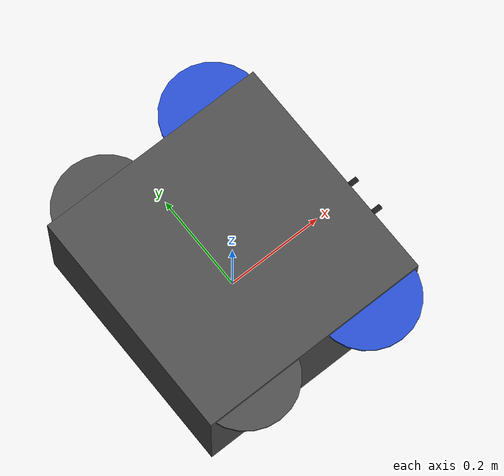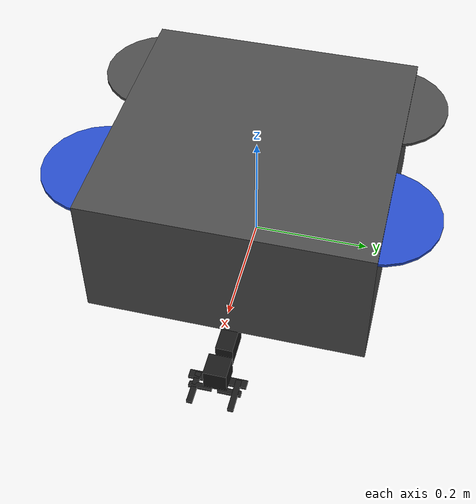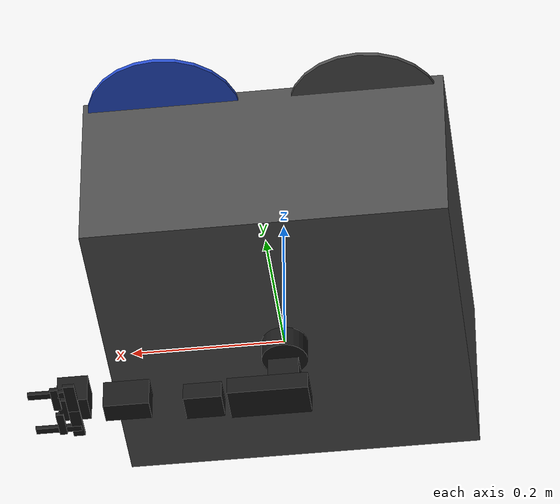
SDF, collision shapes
<?xml version="1.0"?>
<sdf version="1.9">

  <model name="iris_with_arm">
    <include merge="true">
      <uri>model://iris_with_standoffs</uri>
    </include>

    <include merge="true">
      <uri>model://learm</uri>
      <name>learm</name>
      <pose degrees="true">0 0 0 180 0 0</pose>
    </include>

    <joint name="arm_base_joint" type="fixed">
      <pose relative_to="base_link">0 0 -0.05 0 0 0</pose>
      <parent>base_link</parent>
      <child>arm_base_link</child>
    </joint>

    <plugin filename="gz-sim-joint-state-publisher-system"
      name="gz::sim::systems::JointStatePublisher">
    </plugin>

    <plugin
      filename="gz-sim-odometry-publisher-system"
      name="gz::sim::systems::OdometryPublisher">
      <odom_frame>odom</odom_frame>
      <robot_base_frame>base_link</robot_base_frame>
      <dimensions>3</dimensions>
    </plugin>

    <plugin filename="gz-sim-lift-drag-system"
        name="gz::sim::systems::LiftDrag">
      <a0>0.3</a0>
      <alpha_stall>1.4</alpha_stall>
      <cla>4.2500</cla>
      <cda>0.10</cda>
      <cma>0.0</cma>
      <cla_stall>-0.025</cla_stall>
      <cda_stall>0.0</cda_stall>
      <cma_stall>0.0</cma_stall>
      <area>0.002</area>
      <air_density>1.2041</air_density>
      <cp>0.084 0 0</cp>
      <forward>0 1 0</forward>
      <upward>0 0 1</upward>
      <link_name>rotor_0</link_name>
    </plugin>
    <plugin filename="gz-sim-lift-drag-system"
        name="gz::sim::systems::LiftDrag">
      <a0>0.3</a0>
      <alpha_stall>1.4</alpha_stall>
      <cla>4.2500</cla>
      <cda>0.10</cda>
      <cma>0.0</cma>
      <cla_stall>-0.025</cla_stall>
      <cda_stall>0.0</cda_stall>
      <cma_stall>0.0</cma_stall>
      <area>0.002</area>
      <air_density>1.2041</air_density>
      <cp>-0.084 0 0</cp>
      <forward>0 -1 0</forward>
      <upward>0 0 1</upward>
      <link_name>rotor_0</link_name>
    </plugin>

    <plugin filename="gz-sim-lift-drag-system"
        name="gz::sim::systems::LiftDrag">
      <a0>0.3</a0>
      <alpha_stall>1.4</alpha_stall>
      <cla>4.2500</cla>
      <cda>0.10</cda>
      <cma>0.0</cma>
      <cla_stall>-0.025</cla_stall>
      <cda_stall>0.0</cda_stall>
      <cma_stall>0.0</cma_stall>
      <area>0.002</area>
      <air_density>1.2041</air_density>
      <cp>0.084 0 0</cp>
      <forward>0 1 0</forward>
      <upward>0 0 1</upward>
      <link_name>rotor_1</link_name>
    </plugin>
    <plugin filename="gz-sim-lift-drag-system"
        name="gz::sim::systems::LiftDrag">
      <a0>0.3</a0>
      <alpha_stall>1.4</alpha_stall>
      <cla>4.2500</cla>
      <cda>0.10</cda>
      <cma>0.0</cma>
      <cla_stall>-0.025</cla_stall>
      <cda_stall>0.0</cda_stall>
      <cma_stall>0.0</cma_stall>
      <area>0.002</area>
      <air_density>1.2041</air_density>
      <cp>-0.084 0 0</cp>
      <forward>0 -1 0</forward>
      <upward>0 0 1</upward>
      <link_name>rotor_1</link_name>
    </plugin>

    <plugin filename="gz-sim-lift-drag-system"
        name="gz::sim::systems::LiftDrag">
      <a0>0.3</a0>
      <alpha_stall>1.4</alpha_stall>
      <cla>4.2500</cla>
      <cda>0.10</cda>
      <cma>0.0</cma>
      <cla_stall>-0.025</cla_stall>
      <cda_stall>0.0</cda_stall>
      <cma_stall>0.0</cma_stall>
      <area>0.002</area>
      <air_density>1.2041</air_density>
      <cp>0.084 0 0</cp>
      <forward>0 -1 0</forward>
      <upward>0 0 1</upward>
      <link_name>rotor_2</link_name>
    </plugin>
    <plugin filename="gz-sim-lift-drag-system"
        name="gz::sim::systems::LiftDrag">
      <a0>0.3</a0>
      <alpha_stall>1.4</alpha_stall>
      <cla>4.2500</cla>
      <cda>0.10</cda>
      <cma>0.0</cma>
      <cla_stall>-0.025</cla_stall>
      <cda_stall>0.0</cda_stall>
      <cma_stall>0.0</cma_stall>
      <area>0.002</area>
      <air_density>1.2041</air_density>
      <cp>-0.084 0 0</cp>
      <forward>0 1 0</forward>
      <upward>0 0 1</upward>
      <link_name>rotor_2</link_name>
    </plugin>

    <plugin filename="gz-sim-lift-drag-system"
        name="gz::sim::systems::LiftDrag">
      <a0>0.3</a0>
      <alpha_stall>1.4</alpha_stall>
      <cla>4.2500</cla>
      <cda>0.10</cda>
      <cma>0.0</cma>
      <cla_stall>-0.025</cla_stall>
      <cda_stall>0.0</cda_stall>
      <cma_stall>0.0</cma_stall>
      <area>0.002</area>
      <air_density>1.2041</air_density>
      <cp>0.084 0 0</cp>
      <forward>0 -1 0</forward>
      <upward>0 0 1</upward>
      <link_name>rotor_3</link_name>
    </plugin>
    <plugin filename="gz-sim-lift-drag-system"
        name="gz::sim::systems::LiftDrag">
      <a0>0.3</a0>
      <alpha_stall>1.4</alpha_stall>
      <cla>4.2500</cla>
      <cda>0.10</cda>
      <cma>0.0</cma>
      <cla_stall>-0.025</cla_stall>
      <cda_stall>0.0</cda_stall>
      <cma_stall>0.0</cma_stall>
      <area>0.002</area>
      <air_density>1.2041</air_density>
      <cp>-0.084 0 0</cp>
      <forward>0 1 0</forward>
      <upward>0 0 1</upward>
      <link_name>rotor_3</link_name>
    </plugin>

    <plugin filename="gz-sim-apply-joint-force-system"
      name="gz::sim::systems::ApplyJointForce">
      <joint_name>rotor_0_joint</joint_name>
    </plugin>
    <plugin filename="gz-sim-apply-joint-force-system"
      name="gz::sim::systems::ApplyJointForce">
      <joint_name>rotor_1_joint</joint_name>
    </plugin>
    <plugin filename="gz-sim-apply-joint-force-system"
      name="gz::sim::systems::ApplyJointForce">
      <joint_name>rotor_2_joint</joint_name>
    </plugin>
    <plugin filename="gz-sim-apply-joint-force-system"
      name="gz::sim::systems::ApplyJointForce">
      <joint_name>rotor_3_joint</joint_name>
    </plugin>

    <plugin filename="gz-sim-linearbatteryplugin-system"
      name="gz::sim::systems::LinearBatteryPlugin">
      <battery_name>lipo_3500mAh</battery_name>
      <fix_issue_225>true</fix_issue_225>
      <open_circuit_voltage_constant_coef>12.6</open_circuit_voltage_constant_coef>
      <open_circuit_voltage_linear_coef>-2.7</open_circuit_voltage_linear_coef>
      <capacity>3.5</capacity>
      <voltage>12.6</voltage>
      <initial_charge>3.5</initial_charge>
      <power_load>200.0</power_load>
      <start_draining>false</start_draining>
    </plugin>

    <plugin name="ArduPilotPlugin"
      filename="ArduPilotPlugin">
      <fdm_addr>127.0.0.1</fdm_addr>
      <fdm_port_in>9002</fdm_port_in>
      <connectionTimeoutMaxCount>5</connectionTimeoutMaxCount>
      <lock_step>1</lock_step>
      <modelXYZToAirplaneXForwardZDown degrees="true">0 0 0 180 0 0</modelXYZToAirplaneXForwardZDown>
      <gazeboXYZToNED degrees="true">0 0 0 180 0 90</gazeboXYZToNED>

      <!-- Sensors -->
      <imuName>imu_link::imu_sensor</imuName>

      <!-- Control channels -->
      <!--
          incoming control command [0, 1]
          so offset it by 0 to get [0, 1]
          and divide max target by 1.
          offset = 0
          multiplier = 838 max rpm / 1 = 838
        -->
      <control channel="0">
        <jointName>rotor_0_joint</jointName>
        <useForce>1</useForce>
        <multiplier>838</multiplier>
        <offset>0</offset>
        <servo_min>1100</servo_min>
        <servo_max>1900</servo_max>
        <type>VELOCITY</type>
        <p_gain>0.20</p_gain>
        <i_gain>0</i_gain>
        <d_gain>0</d_gain>
        <i_max>0</i_max>
        <i_min>0</i_min>
        <cmd_max>2.5</cmd_max>
        <cmd_min>-2.5</cmd_min>
        <controlVelocitySlowdownSim>1</controlVelocitySlowdownSim>
      </control>

      <control channel="1">
        <jointName>rotor_1_joint</jointName>
        <useForce>1</useForce>
        <multiplier>838</multiplier>
        <offset>0</offset>
        <servo_min>1100</servo_min>
        <servo_max>1900</servo_max>
        <type>VELOCITY</type>
        <p_gain>0.20</p_gain>
        <i_gain>0</i_gain>
        <d_gain>0</d_gain>
        <i_max>0</i_max>
        <i_min>0</i_min>
        <cmd_max>2.5</cmd_max>
        <cmd_min>-2.5</cmd_min>
        <controlVelocitySlowdownSim>1</controlVelocitySlowdownSim>
      </control>

      <control channel="2">
        <jointName>rotor_2_joint</jointName>
        <useForce>1</useForce>
        <multiplier>-838</multiplier>
        <offset>0</offset>
        <servo_min>1100</servo_min>
        <servo_max>1900</servo_max>
        <type>VELOCITY</type>
        <p_gain>0.20</p_gain>
        <i_gain>0</i_gain>
        <d_gain>0</d_gain>
        <i_max>0</i_max>
        <i_min>0</i_min>
        <cmd_max>2.5</cmd_max>
        <cmd_min>-2.5</cmd_min>
        <controlVelocitySlowdownSim>1</controlVelocitySlowdownSim>
      </control>

      <control channel="3">
        <jointName>rotor_3_joint</jointName>
        <useForce>1</useForce>
        <multiplier>-838</multiplier>
        <offset>0</offset>
        <servo_min>1100</servo_min>
        <servo_max>1900</servo_max>
        <type>VELOCITY</type>
        <p_gain>0.20</p_gain>
        <i_gain>0</i_gain>
        <d_gain>0</d_gain>
        <i_max>0</i_max>
        <i_min>0</i_min>
        <cmd_max>2.5</cmd_max>
        <cmd_min>-2.5</cmd_min>
        <controlVelocitySlowdownSim>1</controlVelocitySlowdownSim>
      </control>

    </plugin>

  </model>

</sdf>

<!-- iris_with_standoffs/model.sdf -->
<sdf version='1.6'>
  <model name='iris'>
    <pose>0 0 0.194923 0 0 0</pose>
    <link name='base_link'>
      <velocity_decay>
        <linear>0.0</linear>
        <angular>0.0</angular>
      </velocity_decay>
      <inertial>
        <pose>0 0 0 0 0 0</pose>
        <mass>1.5</mass>
        <inertia>
          <ixx>0.008</ixx>
          <ixy>0</ixy>
          <ixz>0</ixz>
          <iyy>0.015</iyy>
          <iyz>0</iyz>
          <izz>0.017</izz>
        </inertia>
      </inertial>
      <collision name='base_link_collision'>
        <pose>0 0 -0.08 0 0 0</pose>
        <geometry>
          <box>
            <size>0.47 0.47 0.23</size>
          </box>
        </geometry>
        <surface>
          <contact>
            <ode>
              <max_vel>100.0</max_vel>
              <min_depth>0.001</min_depth>
            </ode>
          </contact>
          <friction>
            <ode>
              <mu>1.0</mu>
              <mu2>1.0</mu2>
            </ode>
          </friction>
        </surface>
      </collision>
      <visual name='base_link_visual'>
        <geometry>
          <mesh>
            <uri>model://iris_with_standoffs/meshes/iris.dae</uri>
          </mesh>
        </geometry>
        <material>
          <script>
            <name>Gazebo/DarkGrey</name>
          </script>
        </material>
      </visual>

      <visual name='front_left_leg_visual'>
        <pose>0.123 0.22 -0.11 0 0 0</pose>
        <geometry>
          <cylinder>
            <radius>0.005</radius>
            <length>0.17</length>
          </cylinder>
        </geometry>
        <material>
          <script>
            <name>Gazebo/FlatBlack</name>
            <uri>file://media/materials/scripts/gazebo.material</uri>
          </script>
        </material>
      </visual>
      <visual name='front_right_leg_visual'>
        <pose>0.123 -0.22 -0.11 0 0 0</pose>
        <geometry>
          <cylinder>
            <radius>0.005</radius>
            <length>0.17</length>
          </cylinder>
        </geometry>
        <material>
          <script>
            <name>Gazebo/FlatBlack</name>
            <uri>file://media/materials/scripts/gazebo.material</uri>
          </script>
        </material>
      </visual>
      <visual name='rear_left_leg_visual'>
        <pose>-0.140 0.21 -0.11 0 0 0</pose>
        <geometry>
          <cylinder>
            <radius>0.005</radius>
            <length>0.17</length>
          </cylinder>
        </geometry>
        <material>
          <script>
            <name>Gazebo/FlatBlack</name>
            <uri>file://media/materials/scripts/gazebo.material</uri>
          </script>
        </material>
      </visual>
      <visual name='rear_right_leg_visual'>
        <pose>-0.140 -0.21 -0.11 0 0 0</pose>
        <geometry>
          <cylinder>
            <radius>0.005</radius>
            <length>0.17</length>
          </cylinder>
        </geometry>
        <material>
          <script>
            <name>Gazebo/FlatBlack</name>
            <uri>file://media/materials/scripts/gazebo.material</uri>
          </script>
        </material>
      </visual>
    </link>
    <link name='iris/ground_truth/odometry_sensorgt_link'>
      <pose>0 0 0 0 -0 0</pose>
      <inertial>
        <pose>0 0 0 0 -0 0</pose>
        <mass>0.15</mass>
        <inertia>
          <ixx>0.0001</ixx>
          <ixy>0</ixy>
          <ixz>0</ixz>
          <iyy>0.0002</iyy>
          <iyz>0</iyz>
          <izz>0.0002</izz>
        </inertia>
      </inertial>
    </link>
    <joint name='iris/ground_truth/odometry_sensorgt_joint' type='revolute'>
      <child>iris/ground_truth/odometry_sensorgt_link</child>
      <parent>base_link</parent>
      <axis>
        <xyz>0 0 1</xyz>
        <limit>
          <lower>0</lower>
          <upper>0</upper>
          <effort>0</effort>
          <velocity>0</velocity>
        </limit>
        <dynamics>
          <damping>1.0</damping>
        </dynamics>
        <use_parent_model_frame>1</use_parent_model_frame>
      </axis>
      <physics>
        <ode>
          <implicit_spring_damper>1</implicit_spring_damper>
        </ode>
      </physics>
    </joint>
    <link name='iris/imu_link'>
      <inertial>
        <pose>0 0 0 0 0 0</pose>
        <mass>0.15</mass>
        <inertia>
          <ixx>0.00001</ixx>
          <ixy>0</ixy>
          <ixz>0</ixz>
          <iyy>0.00002</iyy>
          <iyz>0</iyz>
          <izz>0.00002</izz>
        </inertia>
      </inertial>
      <sensor name="imu_sensor" type="imu">
        <pose>0 0 0 3.141593 0 0</pose>
        <always_on>1</always_on>
        <update_rate>1000.0</update_rate>
      </sensor>
    </link>
    <joint name='iris/imu_joint' type='revolute'>
      <child>iris/imu_link</child>
      <parent>base_link</parent>
      <axis>
        <xyz>0 0 1</xyz>
        <limit>
          <lower>0</lower>
          <upper>0</upper>
          <effort>0</effort>
          <velocity>0</velocity>
        </limit>
        <dynamics>
          <damping>1.0</damping>
        </dynamics>
        <use_parent_model_frame>1</use_parent_model_frame>
      </axis>
      <physics>
        <ode>
          <implicit_spring_damper>1</implicit_spring_damper>
        </ode>
      </physics>
    </joint>
    <link name='rotor_0'>
      <pose>0.13 -0.22 0.023 0 -0 0</pose>
      <inertial>
        <pose>0 0 0 0 -0 0</pose>
        <mass>0.025</mass>
        <inertia>
          <ixx>9.75e-06</ixx>
          <ixy>0</ixy>
          <ixz>0</ixz>
          <iyy>0.000166704</iyy>
          <iyz>0</iyz>
          <izz>0.000167604</izz>
        </inertia>
      </inertial>
      <collision name='rotor_0_collision'>
        <pose>0 0 0 0 -0 0</pose>
        <geometry>
          <cylinder>
            <length>0.005</length>
            <radius>0.1</radius>
          </cylinder>
        </geometry>
        <surface>
          <contact>
            <ode/>
          </contact>
          <friction>
            <ode/>
          </friction>
        </surface>
      </collision>
      <visual name='rotor_0_visual'>
        <pose>0 0 0 0 -0 0</pose>
        <geometry>
          <mesh>
            <scale>1 1 1</scale>
            <uri>model://iris_with_standoffs/meshes/iris_prop_ccw.dae</uri>
          </mesh>
        </geometry>
        <material>
          <script>
            <name>Gazebo/Blue</name>
            <uri>__default__</uri>
          </script>
        </material>
      </visual>
      <gravity>1</gravity>
      <velocity_decay/>
      <self_collide>0</self_collide>
    </link>
    <joint name='rotor_0_joint' type='revolute'>
      <child>rotor_0</child>
      <parent>base_link</parent>
      <axis>
        <xyz>0 0 1</xyz>
        <limit>
          <lower>-1e+16</lower>
          <upper>1e+16</upper>
        </limit>
        <dynamics>
          <damping>0.004</damping>
        </dynamics>
        <use_parent_model_frame>1</use_parent_model_frame>
      </axis>
      <physics>
        <ode>
          <implicit_spring_damper>1</implicit_spring_damper>
        </ode>
      </physics>
    </joint>
    <link name='rotor_1'>
      <pose>-0.13 0.2 0.023 0 -0 0</pose>
      <inertial>
        <pose>0 0 0 0 -0 0</pose>
        <mass>0.025</mass>
        <inertia>
          <ixx>9.75e-06</ixx>
          <ixy>0</ixy>
          <ixz>0</ixz>
          <iyy>0.000166704</iyy>
          <iyz>0</iyz>
          <izz>0.000167604</izz>
        </inertia>
      </inertial>
      <collision name='rotor_1_collision'>
        <pose>0 0 0 0 -0 0</pose>
        <geometry>
          <cylinder>
            <length>0.005</length>
            <radius>0.1</radius>
          </cylinder>
        </geometry>
        <surface>
          <contact>
            <ode/>
          </contact>
          <friction>
            <ode/>
          </friction>
        </surface>
      </collision>
      <visual name='rotor_1_visual'>
        <pose>0 0 0 0 -0 0</pose>
        <geometry>
          <mesh>
            <scale>1 1 1</scale>
            <uri>model://iris_with_standoffs/meshes/iris_prop_ccw.dae</uri>
          </mesh>
        </geometry>
        <material>
          <script>
            <name>Gazebo/DarkGrey</name>
            <uri>__default__</uri>
          </script>
        </material>
      </visual>
      <gravity>1</gravity>
      <velocity_decay/>
      <self_collide>0</self_collide>
    </link>
    <joint name='rotor_1_joint' type='revolute'>
      <child>rotor_1</child>
      <parent>base_link</parent>
      <axis>
        <xyz>0 0 1</xyz>
        <limit>
          <lower>-1e+16</lower>
          <upper>1e+16</upper>
        </limit>
        <dynamics>
          <damping>0.004</damping>
        </dynamics>
        <use_parent_model_frame>1</use_parent_model_frame>
      </axis>
      <physics>
        <ode>
          <implicit_spring_damper>1</implicit_spring_damper>
        </ode>
      </physics>
    </joint>
    <link name='rotor_2'>
      <pose>0.13 0.22 0.023 0 -0 0</pose>
      <inertial>
        <pose>0 0 0 0 -0 0</pose>
        <mass>0.025</mass>
        <inertia>
          <ixx>9.75e-06</ixx>
          <ixy>0</ixy>
          <ixz>0</ixz>
          <iyy>0.000166704</iyy>
          <iyz>0</iyz>
          <izz>0.000167604</izz>
        </inertia>
      </inertial>
      <collision name='rotor_2_collision'>
        <pose>0 0 0 0 -0 0</pose>
        <geometry>
          <cylinder>
            <length>0.005</length>
            <radius>0.1</radius>
          </cylinder>
        </geometry>
        <surface>
          <contact>
            <ode/>
          </contact>
          <friction>
            <ode/>
          </friction>
        </surface>
      </collision>
      <visual name='rotor_2_visual'>
        <pose>0 0 0 0 -0 0</pose>
        <geometry>
          <mesh>
            <scale>1 1 1</scale>
            <uri>model://iris_with_standoffs/meshes/iris_prop_cw.dae</uri>
          </mesh>
        </geometry>
        <material>
          <script>
            <name>Gazebo/Blue</name>
            <uri>__default__</uri>
          </script>
        </material>
      </visual>
      <gravity>1</gravity>
      <velocity_decay/>
      <self_collide>0</self_collide>
    </link>
    <joint name='rotor_2_joint' type='revolute'>
      <child>rotor_2</child>
      <parent>base_link</parent>
      <axis>
        <xyz>0 0 1</xyz>
        <limit>
          <lower>-1e+16</lower>
          <upper>1e+16</upper>
        </limit>
        <dynamics>
          <damping>0.004</damping>
        </dynamics>
        <use_parent_model_frame>1</use_parent_model_frame>
      </axis>
      <physics>
        <ode>
          <implicit_spring_damper>1</implicit_spring_damper>
        </ode>
      </physics>
    </joint>
    <link name='rotor_3'>
      <pose>-0.13 -0.2 0.023 0 -0 0</pose>
      <inertial>
        <pose>0 0 0 0 -0 0</pose>
        <mass>0.025</mass>
        <inertia>
          <ixx>9.75e-06</ixx>
          <ixy>0</ixy>
          <ixz>0</ixz>
          <iyy>0.000166704</iyy>
          <iyz>0</iyz>
          <izz>0.000167604</izz>
        </inertia>
      </inertial>
      <collision name='rotor_3_collision'>
        <pose>0 0 0 0 -0 0</pose>
        <geometry>
          <cylinder>
            <length>0.005</length>
            <radius>0.1</radius>
          </cylinder>
        </geometry>
        <surface>
          <contact>
            <ode/>
          </contact>
          <friction>
            <ode/>
          </friction>
        </surface>
      </collision>
      <visual name='rotor_3_visual'>
        <pose>0 0 0 0 -0 0</pose>
        <geometry>
          <mesh>
            <scale>1 1 1</scale>
            <uri>model://iris_with_standoffs/meshes/iris_prop_cw.dae</uri>
          </mesh>
        </geometry>
        <material>
          <script>
            <name>Gazebo/DarkGrey</name>
            <uri>__default__</uri>
          </script>
        </material>
      </visual>
      <gravity>1</gravity>
      <velocity_decay/>
      <self_collide>0</self_collide>
    </link>
    <joint name='rotor_3_joint' type='revolute'>
      <child>rotor_3</child>
      <parent>base_link</parent>
      <axis>
        <xyz>0 0 1</xyz>
        <limit>
          <lower>-1e+16</lower>
          <upper>1e+16</upper>
        </limit>
        <dynamics>
          <damping>0.004</damping>
        </dynamics>
        <use_parent_model_frame>1</use_parent_model_frame>
      </axis>
      <physics>
        <ode>
          <implicit_spring_damper>1</implicit_spring_damper>
        </ode>
      </physics>
    </joint>
    <static>0</static>
  </model>
</sdf>

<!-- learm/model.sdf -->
<sdf version="1.9">
  <model name="learm">
    <link name="arm_base_link">
      <self_collide>0</self_collide>
      <inertial>
        <pose>0 0 0 0 0 0</pose>
        <mass>0.034268493</mass>
        <inertia>
          <ixx>1.7991E-05</ixx>
          <ixy>0</ixy>
          <ixz>0</ixz>
          <iyy>1.7991E-05</iyy>
          <iyz>0</iyz>
          <izz>1.54208E-05</izz>
        </inertia>
      </inertial>
      <collision name="arm_base_link_collision">
        <pose>0 0 0 0 0 0</pose>
        <geometry>
          <cylinder>
            <radius>0.03</radius>
            <length>0.06</length>
          </cylinder>
        </geometry>
      </collision>
      <visual name="arm_base_link_visual">
        <pose>0 0 0 0 0 0</pose>
        <geometry>
          <cylinder>
            <radius>0.03</radius><length>0.06</length>
          </cylinder>
        </geometry>
        <material>
          <ambient>0.1 0.1 0.1</ambient>
          <diffuse>0.1 0.1 0.1</diffuse>
          <specular>0.01 0.01 0.01 1.0</specular>
        </material>
      </visual>
    </link>

    <link name="camera_link">
      <pose relative_to="camera_base_joint">0 0 0 0 0 0</pose>
      <inertial>
        <pose>0 0 0 0 0 0</pose>
        <mass>0.01212</mass>
        <inertia>
          <ixx>0.000001313</ixx>
          <ixy>0</ixy>
          <ixz>0</ixz>
          <iyy>0.000000808</iyy>
          <iyz>0</iyz>
          <izz>0.000001313</izz>
        </inertia>
      </inertial>
      <visual name="camera_link_visual">
        <pose>0 0 0 0 0 0</pose>
        <geometry>
          <box>
            <size>0.02 0.03 0.02</size>
          </box>
        </geometry>
        <material>
          <ambient>0.1 0.1 0.1</ambient>
          <diffuse>0.1 0.1 0.1</diffuse>
          <specular>0.01 0.01 0.01 1.0</specular>
        </material>
      </visual>
      <sensor name="camera_base" type="camera">
        <camera>
          <horizontal_fov>1.0472</horizontal_fov>
          <image>
            <width>320</width>
            <height>240</height>
          </image>
          <clip>
            <near>0.05</near>
            <far>100</far>
          </clip>
        </camera>
        <always_on>true</always_on>
        <update_rate>10</update_rate>
      </sensor>
    </link>
    <joint name="camera_base_joint" type="fixed">
      <pose relative_to="arm_base_link">0 0 0.03 0 0 0</pose>
      <parent>arm_base_link</parent>
      <child>camera_link</child>
    </joint>

    <link name="shoulder_link">
      <self_collide>0</self_collide>
      <pose relative_to="shoulder_pan">0 0 0 0 0 0</pose>
      <inertial>
        <pose>0 0 0 0 0 0</pose>
        <mass>0.02424</mass>
        <inertia>
          <ixx>0.00000505</ixx>
          <ixy>0</ixy>
          <ixz>0</ixz>
          <iyy>0.00000505</iyy>
          <iyz>0</iyz>
          <izz>0.000006464</izz>
        </inertia>
      </inertial>
      <collision name="shoulder_link_collision">
        <pose>0 0 0 0 0 0</pose>
        <geometry>
          <box>
            <size>0.04 0.04 0.03</size>
          </box>
        </geometry>
      </collision>
      <visual name="shoulder_link_visual">
        <pose>0 0 0 0 0 0</pose>
        <geometry>
          <mesh>
            <scale>1 1 1</scale>
            <uri>package://ardupilot_gz_description/models/learm/meshes/shoulder.stl</uri>
          </mesh>
        </geometry>
        <material>
          <ambient>0.1 0.1 0.1</ambient>
          <diffuse>0.1 0.1 0.1</diffuse>
          <specular>0.01 0.01 0.01 1.0</specular>
        </material>
      </visual>
    </link>
    <joint name="shoulder_pan" type="revolute">
      <pose relative_to="arm_base_link">0 0 0.059 0 0 0</pose>
      <parent>arm_base_link</parent>
      <child>shoulder_link</child>
      <axis>
        <xyz>0 0 1</xyz>
        <limit>
          <lower>-1.57</lower>
          <upper>1.57</upper>
        </limit>
        <dynamics>
          <damping>0.01</damping>
        </dynamics>
      </axis>
    </joint>

    <link name="humerus_link">
      <self_collide>0</self_collide>
      <pose relative_to="shoulder_lift">0 0 0 0 0 0</pose>
      <inertial>
        <pose>0 0 0.03 0 0 0</pose>
        <mass>0.019831304</mass>
        <inertia>
          <ixx>2.23515E-05</ixx>
          <ixy>0</ixy>
          <ixz>0</ixz>
          <iyy>1.92529E-05</iyy>
          <iyz>0</iyz>
          <izz>5.1644E-06</izz>
        </inertia>
      </inertial>
      <collision name="humerus_link_collision">
        <pose>0 0 0.03 0 0 0</pose>
        <geometry>
          <box>
            <size>0.025 0.05 0.105</size>
          </box>
        </geometry>
      </collision>
      <visual name="humerus_link_visual">
        <pose>0 0 0 0 0 0</pose>
        <geometry>
          <mesh>
            <scale>1 1 1</scale>
            <uri>package://ardupilot_gz_description/models/learm/meshes/humerus.stl</uri>
          </mesh>
        </geometry>
        <material>
          <ambient>0.1 0.1 0.1</ambient>
          <diffuse>0.1 0.1 0.1</diffuse>
          <specular>0.01 0.01 0.01 1.0</specular>
        </material>
      </visual>
    </link>
    <joint name="shoulder_lift" type="revolute">
      <pose relative_to="shoulder_link" degrees="true">-0.01 0 0.028 0 90 0</pose>
      <parent>shoulder_link</parent>
      <child>humerus_link</child>
      <axis>
        <xyz>0 1 0</xyz>
        <limit>
          <lower>-3.142</lower>
          <upper>0.0</upper>
        </limit>
        <dynamics>
          <damping>0.01</damping>
        </dynamics>
      </axis>
    </joint>

    <link name="forearm_link">
      <self_collide>0</self_collide>
      <pose relative_to="elbow">0 0 0 0 0 0</pose>
      <inertial>
        <pose>0 0 0.01 0 0 0</pose>
        <mass>0.039662607</mass>
        <inertia>
          <ixx>1.35514E-05</ixx>
          <ixy>0</ixy>
          <ixz>0</ixz>
          <iyy>1.03288E-05</iyy>
          <iyz>0</iyz>
          <izz>7.35411E-06</izz>
        </inertia>
      </inertial>
      <collision name="forearm_link_collision">
        <pose>0 0 0.01 0 0 0</pose>
        <geometry>
          <box>
            <size>0.025 0.04 0.05</size>
          </box>
        </geometry>
      </collision>
      <visual name="forearm_link_visual">
        <pose>0 0 0 0 0 0</pose>
        <geometry>
          <mesh>
            <scale>1 1 1</scale>
            <uri>package://ardupilot_gz_description/models/learm/meshes/forearm.stl</uri>
          </mesh>
        </geometry>
        <material>
          <ambient>0.1 0.1 0.1</ambient>
          <diffuse>0.1 0.1 0.1</diffuse>
          <specular>0.01 0.01 0.01 1.0</specular>
        </material>
      </visual>
    </link>
    <joint name="elbow" type="revolute">
      <pose relative_to="humerus_link">0 0 0.105 0 0 0</pose>
      <parent>humerus_link</parent>
      <child>forearm_link</child>
      <axis>
        <xyz>0 -1 0</xyz>
        <limit>
          <lower>-1.57</lower>
          <upper>1.57</upper>
        </limit>
        <dynamics>
          <damping>0.04</damping>
        </dynamics>
      </axis>
    </joint>

    <link name="wrist_link">
      <self_collide>0</self_collide>
      <pose relative_to="wrist_flex">0 0 0 0 0 0</pose>
      <inertial>
        <pose>0.01 0 0.02 0 0 0</pose>
        <mass>0.07272</mass>
        <inertia>
          <ixx>0.00002727</ixx>
          <ixy>0</ixy>
          <ixz>0</ixz>
          <iyy>0.000031512</iyy>
          <iyz>0</iyz>
          <izz>0.00001515</izz>
        </inertia>
      </inertial>
      <collision name="wrist_link_collision">
        <pose>0.01 0 0.02 0 0 0</pose>
        <geometry>
          <box>
            <size>0.04 0.03 0.06</size>
          </box>
        </geometry>
      </collision>
      <visual name="wrist_link_visual">
        <pose>0 0 0 0 0 0</pose>
        <geometry>
          <mesh>
            <scale>1 1 1</scale>
            <uri>package://ardupilot_gz_description/models/learm/meshes/wrist.stl</uri>
          </mesh>
        </geometry>
        <material>
          <ambient>0.1 0.1 0.1</ambient>
          <diffuse>0.1 0.1 0.1</diffuse>
          <specular>0.01 0.01 0.01 1.0</specular>
        </material>
      </visual>
    </link>
    <joint name="wrist_flex" type="revolute">
      <pose relative_to="forearm_link">0 0 0.09 0 0 0</pose>
      <parent>forearm_link</parent>
      <child>wrist_link</child>
      <axis>
        <xyz>0 -1 0</xyz>
        <limit>
          <lower>-1.57</lower>
          <upper>1.57</upper>
        </limit>
        <dynamics>
          <damping>0.04</damping>
        </dynamics>
      </axis>
    </joint>

    <link name="hand_link">
      <self_collide>0</self_collide>
      <pose relative_to="wrist_roll">0 0 0 0 0 0</pose>
      <inertial>
        <pose>0.02 0 0.03 0 0 0</pose>
        <mass>0.06464</mass>
        <inertia>
          <ixx>1.72373E-05</ixx>
          <ixy>0</ixy>
          <ixz>0</ixz>
          <iyy>1.72373E-05</iyy>
          <iyz>0</iyz>
          <izz>1.72373E-05</izz>
        </inertia>
      </inertial>
      <collision name="hand_link_collision">
        <pose>0.02 0 0.03 0 0 0</pose>
        <geometry>
          <box>
            <size>0.04 0.04 0.04</size>
          </box>
        </geometry>
      </collision>
      <visual name="hand_link_visual">
        <pose>0 0 0 0 0 0</pose>
        <geometry>
          <mesh>
            <scale>1 1 1</scale>
            <uri>package://ardupilot_gz_description/models/learm/meshes/hand.stl</uri>
          </mesh>
        </geometry>
        <material>
          <ambient>0.1 0.1 0.1</ambient>
          <diffuse>0.1 0.1 0.1</diffuse>
          <specular>0.01 0.01 0.01 1.0</specular>
        </material>
      </visual>
    </link>
    <joint name="wrist_roll" type="revolute">
      <pose relative_to="wrist_link">0 0 0.06 0 0 0</pose>
      <parent>wrist_link</parent>
      <child>hand_link</child>
      <axis>
        <xyz>0 0 1</xyz>
        <limit>
          <lower>-1.57</lower>
          <upper>1.57</upper>
        </limit>
        <dynamics>
          <damping>0.04</damping>
        </dynamics>
      </axis>
    </joint>

    <link name="camera_wrist_link">
      <pose relative_to="camera_wrist_joint">0 0 0 0 0 0</pose>
      <inertial>
        <pose>0 0 0 0 0 0</pose>
        <mass>0.01212</mass>
        <inertia>
          <ixx>0.000001313</ixx>
          <ixy>0</ixy>
          <ixz>0</ixz>
          <iyy>0.000000808</iyy>
          <iyz>0</iyz>
          <izz>0.000001313</izz>
        </inertia>
      </inertial>
      <visual name="camera_wrist_link_visual">
        <pose>0 0 0 0 0 0</pose>
        <geometry>
          <box>
            <size>0.02 0.03 0.02</size>
          </box>
        </geometry>
        <material>
          <ambient>0.1 0.1 0.1</ambient>
          <diffuse>0.1 0.1 0.1</diffuse>
          <specular>0.01 0.01 0.01 1.0</specular>
        </material>
      </visual>
      <sensor name="camera_wrist" type="camera">
        <camera>
          <horizontal_fov>1.0472</horizontal_fov>
          <image>
            <width>320</width>
            <height>240</height>
          </image>
          <clip>
            <near>0.05</near>
            <far>100</far>
          </clip>
        </camera>
        <always_on>true</always_on>
        <update_rate>10</update_rate>
      </sensor>
    </link>
    <joint name="camera_wrist_joint" type="fixed">
      <pose relative_to="hand_link">0 0.02 0 0 0 0</pose>
      <parent>hand_link</parent>
      <child>camera_wrist_link</child>
    </joint>

    <link name="grip_left_link">
      <self_collide>0</self_collide>
      <pose relative_to="grip_left">0 0 0 0 0 0</pose>
      <inertial>
        <pose>0 0 0.01 0 0 0</pose>
        <mass>0.0037875</mass>
        <inertia>
          <ixx>8.60078E-07</ixx>
          <ixy>0</ixy>
          <ixz>0</ixz>
          <iyy>7.96953E-07</iyy>
          <iyz>0</iyz>
          <izz>7.89063E-08</izz>
        </inertia>
      </inertial>
      <collision name="grip_left_link_collision">
        <pose>0 0 0.01 0 0 0</pose>
        <geometry>
          <box>
            <size>0.005 0.015 0.05</size>
          </box>
        </geometry>
      </collision>
      <visual name="grip_left_link_visual">
        <pose>0 0 0 0 0 0</pose>
        <geometry>
          <mesh>
            <scale>1 1 1</scale>
            <uri>package://ardupilot_gz_description/models/learm/meshes/carpal-left.stl</uri>
          </mesh>
        </geometry>
        <material>
          <ambient>0.1 0.1 0.1</ambient>
          <diffuse>0.1 0.1 0.1</diffuse>
          <specular>0.01 0.01 0.01 1.0</specular>
        </material>
      </visual>
    </link>
    <joint name="grip_left" type="revolute">
      <pose relative_to="hand_link">0 0.015 0.03 -1.57 0 0</pose>
      <parent>hand_link</parent>
      <child>grip_left_link</child>
      <axis>
        <xyz>1 0 0</xyz>
        <limit>
          <lower>0</lower>
          <upper>1.57</upper>
        </limit>
        <dynamics>
          <damping>0.01</damping>
        </dynamics>
      </axis>
    </joint>

    <link name="finger_left_link">
      <self_collide>0</self_collide>
      <pose relative_to="finger_left">0 0 0 0 0 0</pose>
      <inertial>
        <pose>0 -0.01 0.025 0 0 0</pose>
        <mass>0.00303</mass>
        <inertia>
          <ixx>9.3425E-07</ixx>
          <ixy>0</ixy>
          <ixz>0</ixz>
          <iyy>9.15313E-07</iyy>
          <iyz>0</iyz>
          <izz>3.15625E-08</izz>
        </inertia>
      </inertial>
      <collision name="finger_left_link_collision">
        <pose>0 -0.01 0.025 0 0 0</pose>
        <geometry>
          <box>
            <size>0.005 0.01 0.06</size>
          </box>
        </geometry>
      </collision>
      <visual name="finger_left_link_visual">
        <pose>0 0 0 0 0 0</pose>
        <geometry>
          <mesh>
            <scale>1 1 1</scale>
            <uri>package://ardupilot_gz_description/models/learm/meshes/finger.stl</uri>
          </mesh>
        </geometry>
        <material>
          <ambient>0.1 0.1 0.1</ambient>
          <diffuse>0.1 0.1 0.1</diffuse>
          <specular>0.01 0.01 0.01 1.0</specular>
        </material>
      </visual>
    </link>
    <joint name="finger_left" type="revolute">
      <pose relative_to="grip_left_link">0 0 0.03 1.57 0 0</pose>
      <parent>grip_left_link</parent>
      <child>finger_left_link</child>
      <axis>
        <xyz>-1 0 0</xyz>
        <dynamics>
          <damping>0.01</damping>
        </dynamics>
      </axis>
    </joint>

    <link name="grip_right_link">
      <self_collide>0</self_collide>
      <pose relative_to="grip_right">0 0 0 0 0 0</pose>
      <inertial>
        <pose>0 0 0.01 0 0 0</pose>
        <mass>0.0037875</mass>
        <inertia>
          <ixx>8.60078E-07</ixx>
          <ixy>0</ixy>
          <ixz>0</ixz>
          <iyy>7.96953E-07</iyy>
          <iyz>0</iyz>
          <izz>7.89063E-08</izz>
        </inertia>
      </inertial>
      <collision name="grip_right_link_collision">
        <pose>0 0 0.01 0 0 0</pose>
        <geometry>
          <box>
            <size>0.005 0.015 0.05</size>
          </box>
        </geometry>
      </collision>
      <visual name="grip_right_link_visual">
        <pose>0 0 0 0 0 0</pose>
        <geometry>
          <mesh>
            <scale>1 1 1</scale>
            <uri>package://ardupilot_gz_description/models/learm/meshes/carpal-right.stl</uri>
          </mesh>
        </geometry>
        <material>
          <ambient>0.1 0.1 0.1</ambient>
          <diffuse>0.1 0.1 0.1</diffuse>
          <specular>0.01 0.01 0.01 1.0</specular>
        </material>
      </visual>
    </link>
    <joint name="grip_right" type="revolute">
      <pose relative_to="hand_link">0 -0.015 0.03 1.57 0 0</pose>
      <parent>hand_link</parent>
      <child>grip_right_link</child>
      <axis>
        <xyz>-1 0 0</xyz>
        <limit>
          <lower>0</lower>
          <upper>1.57</upper>
        </limit>
        <dynamics>
          <damping>0.01</damping>
        </dynamics>
      </axis>
    </joint>

    <link name="finger_right_link">
      <self_collide>0</self_collide>
      <pose relative_to="finger_right">0 0 0 0 0 0</pose>
      <inertial>
        <pose>0 0.01 0.025 0 0 0</pose>
        <mass>0.00303</mass>
        <inertia>
          <ixx>9.3425E-07</ixx>
          <ixy>0</ixy>
          <ixz>0</ixz>
          <iyy>9.15313E-07</iyy>
          <iyz>0</iyz>
          <izz>3.15625E-08</izz>
        </inertia>
      </inertial>
      <collision name="finger_right_link_collision">
        <pose>0 0.01 0.025 0 0 3.1415899999999999</pose>
        <geometry>
          <box>
            <size>0.005 0.01 0.06</size>
          </box>
        </geometry>
      </collision>
      <visual name="finger_right_link_visual">
        <pose>0 0 0 0 0 3.1415899999999999</pose>
        <geometry>
          <mesh>
            <scale>1 1 1</scale>
            <uri>package://ardupilot_gz_description/models/learm/meshes/finger.stl</uri>
          </mesh>
        </geometry>
        <material>
          <ambient>0.1 0.1 0.1</ambient>
          <diffuse>0.1 0.1 0.1</diffuse>
          <specular>0.01 0.01 0.01 1.0</specular>
        </material>
      </visual>
    </link>
    <joint name="finger_right" type="revolute">
      <pose relative_to="grip_right_link">0 0 0.03 -1.57 0 0</pose>
      <parent>grip_right_link</parent>
      <child>finger_right_link</child>
      <axis>
        <xyz>1 0 0</xyz>
        <dynamics>
          <damping>0.01</damping>
        </dynamics>
      </axis>
    </joint>

    <link name="tendon_left_link">
      <self_collide>0</self_collide>
      <pose relative_to="tendon_left">0 0 0 0 0 0</pose>
      <inertial>
        <pose>0 0 0.02 0 0 0</pose>
        <mass>0.00202</mass>
        <inertia>
          <ixx>2.86167E-07</ixx>
          <ixy>0</ixy>
          <ixz>0</ixz>
          <iyy>2.73542E-07</iyy>
          <iyz>0</iyz>
          <izz>2.10417E-08</izz>
        </inertia>
      </inertial>
      <collision name="tendon_left_link_collision">
        <pose>0 0 0.02 0 0 0</pose>
        <geometry>
          <box>
            <size>0.005 0.01 0.04</size>
          </box>
        </geometry>
      </collision>
      <visual name="tendon_left_link_visual">
        <pose>0 0 0 0 0 0</pose>
        <geometry>
          <mesh>
            <scale>1 1 1</scale>
            <uri>package://ardupilot_gz_description/models/learm/meshes/tendon.stl</uri>
          </mesh>
        </geometry>
        <material>
          <ambient>0.1 0.1 0.1</ambient>
          <diffuse>0.1 0.1 0.1</diffuse>
          <specular>0.01 0.01 0.01 1.0</specular>
        </material>
      </visual>
    </link>
    <joint name="tendon_left" type="revolute">
      <pose relative_to="hand_link">0 0.005 0.05 -1.57 0 0</pose>
      <parent>hand_link</parent>
      <child>tendon_left_link</child>
      <axis>
        <xyz>1 0 0</xyz>
        <dynamics>
          <damping>0.01</damping>
        </dynamics>
      </axis>
    </joint>

    <link name="tendon_right_link">
      <self_collide>0</self_collide>
      <pose relative_to="tendon_right">0 0 0 0 0 0</pose>
      <inertial>
        <pose>0 0 0.02 0 0 0</pose>
        <mass>0.00202</mass>
        <inertia>
          <ixx>2.86167E-07</ixx>
          <ixy>0</ixy>
          <ixz>0</ixz>
          <iyy>2.73542E-07</iyy>
          <iyz>0</iyz>
          <izz>2.10417E-08</izz>
        </inertia>
      </inertial>
      <collision name="tendon_right_link_collision">
        <pose>0 0 0.02 0 0 0</pose>
        <geometry>
          <box>
            <size>0.005 0.01 0.04</size>
          </box>
        </geometry>
      </collision>
      <visual name="tendon_right_link_visual">
        <pose>0 0 0 0 0 0</pose>
        <geometry>
          <mesh>
            <scale>1 1 1</scale>
            <uri>package://ardupilot_gz_description/models/learm/meshes/tendon.stl</uri>
          </mesh>
        </geometry>
        <material>
          <ambient>0.1 0.1 0.1</ambient>
          <diffuse>0.1 0.1 0.1</diffuse>
          <specular>0.01 0.01 0.01 1.0</specular>
        </material>
      </visual>
    </link>
    <joint name="tendon_right" type="revolute">
      <pose relative_to="hand_link">0 -0.005 0.05 1.57 0 0</pose>
      <parent>hand_link</parent>
      <child>tendon_right_link</child>
      <axis>
        <xyz>-1 0 0</xyz>
        <dynamics>
          <damping>0.01</damping>
        </dynamics>
      </axis>
    </joint>

    <!-- Links and detachable joint plugins to close kinematic chains in gripper -->

    <plugin filename="gz-sim-joint-state-publisher-system"
      name="gz::sim::systems::JointStatePublisher">
    </plugin>

    <plugin filename="gz-sim-joint-position-controller-system"
        name="gz::sim::systems::JointPositionController">
      <joint_name>shoulder_pan</joint_name>
      <topic>/learm/shoulder_pan/cmd_pos</topic>
      <initial_position>0.0</initial_position>
      <p_gain>1</p_gain>
      <i_gain>0.0</i_gain>
      <d_gain>0.1</d_gain>
      <i_max>1</i_max>
      <i_min>-1</i_min>
      <cmd_max>10</cmd_max>
      <cmd_min>-10</cmd_min>
    </plugin>

    <plugin filename="gz-sim-joint-position-controller-system"
        name="gz::sim::systems::JointPositionController">
      <joint_name>shoulder_lift</joint_name>
      <topic>/learm/shoulder_lift/cmd_pos</topic>
      <initial_position>-0.3</initial_position>
      <p_gain>1</p_gain>
      <i_gain>0.0</i_gain>
      <d_gain>0.1</d_gain>
      <i_max>1</i_max>
      <i_min>-1</i_min>
      <cmd_max>10</cmd_max>
      <cmd_min>-10</cmd_min>
    </plugin>

    <plugin filename="gz-sim-joint-position-controller-system"
        name="gz::sim::systems::JointPositionController">
      <joint_name>elbow</joint_name>
      <topic>/learm/elbow/cmd_pos</topic>
      <initial_position>-1.57</initial_position>
      <p_gain>1</p_gain>
      <i_gain>0.0</i_gain>
      <d_gain>0.01</d_gain>
      <i_max>1</i_max>
      <i_min>-1</i_min>
      <cmd_max>10</cmd_max>
      <cmd_min>-10</cmd_min>
    </plugin>

    <plugin filename="gz-sim-joint-position-controller-system"
        name="gz::sim::systems::JointPositionController">
      <joint_name>wrist_flex</joint_name>
      <topic>/learm/wrist_flex/cmd_pos</topic>
      <initial_position>1.57</initial_position>
      <p_gain>1</p_gain>
      <i_gain>0.0</i_gain>
      <d_gain>0.01</d_gain>
      <i_max>1</i_max>
      <i_min>-1</i_min>
      <cmd_max>10</cmd_max>
      <cmd_min>-10</cmd_min>
    </plugin>

    <plugin filename="gz-sim-joint-position-controller-system"
        name="gz::sim::systems::JointPositionController">
      <joint_name>wrist_roll</joint_name>
      <topic>/learm/wrist_roll/cmd_pos</topic>
      <initial_position>0.0</initial_position>
      <p_gain>1</p_gain>
      <i_gain>0.0</i_gain>
      <d_gain>0.01</d_gain>
      <i_max>1</i_max>
      <i_min>-1</i_min>
      <cmd_max>10</cmd_max>
      <cmd_min>-10</cmd_min>
    </plugin>

    <plugin filename="gz-sim-joint-position-controller-system"
        name="gz::sim::systems::JointPositionController">
      <joint_name>grip_left</joint_name>
      <topic>/learm/grip/cmd_pos</topic>
      <initial_position>0.0</initial_position>
      <p_gain>1</p_gain>
      <i_gain>0.0</i_gain>
      <d_gain>0.0</d_gain>
      <i_max>1</i_max>
      <i_min>-1</i_min>
      <cmd_max>10</cmd_max>
      <cmd_min>-10</cmd_min>
    </plugin>

    <plugin filename="gz-sim-joint-position-controller-system"
        name="gz::sim::systems::JointPositionController">
      <joint_name>grip_right</joint_name>
      <topic>/learm/grip/cmd_pos</topic>
      <initial_position>0.0</initial_position>
      <p_gain>1</p_gain>
      <i_gain>0.0</i_gain>
      <d_gain>0.0</d_gain>
      <i_max>1</i_max>
      <i_min>-1</i_min>
      <cmd_max>10</cmd_max>
      <cmd_min>-10</cmd_min>
    </plugin>

    <plugin filename="gz-sim-joint-position-controller-system"
        name="gz::sim::systems::JointPositionController">
      <joint_name>finger_left</joint_name>
      <topic>/learm/grip/cmd_pos</topic>
      <initial_position>0.0</initial_position>
      <p_gain>1</p_gain>
      <i_gain>0.0</i_gain>
      <d_gain>0.0</d_gain>
      <i_max>1</i_max>
      <i_min>-1</i_min>
      <cmd_max>10</cmd_max>
      <cmd_min>-10</cmd_min>
    </plugin>

    <plugin filename="gz-sim-joint-position-controller-system"
        name="gz::sim::systems::JointPositionController">
      <joint_name>finger_right</joint_name>
      <topic>/learm/grip/cmd_pos</topic>
      <initial_position>0.0</initial_position>
      <p_gain>1</p_gain>
      <i_gain>0.0</i_gain>
      <d_gain>0.0</d_gain>
      <i_max>1</i_max>
      <i_min>-1</i_min>
      <cmd_max>10</cmd_max>
      <cmd_min>-10</cmd_min>
    </plugin>

    <plugin filename="gz-sim-joint-position-controller-system"
        name="gz::sim::systems::JointPositionController">
      <joint_name>tendon_left</joint_name>
      <topic>/learm/grip/cmd_pos</topic>
      <initial_position>0.0</initial_position>
      <p_gain>1</p_gain>
      <i_gain>0.0</i_gain>
      <d_gain>0.0</d_gain>
      <i_max>1</i_max>
      <i_min>-1</i_min>
      <cmd_max>10</cmd_max>
      <cmd_min>-10</cmd_min>
    </plugin>

    <plugin filename="gz-sim-joint-position-controller-system"
        name="gz::sim::systems::JointPositionController">
      <joint_name>tendon_right</joint_name>
      <topic>/learm/grip/cmd_pos</topic>
      <initial_position>0.0</initial_position>
      <p_gain>1</p_gain>
      <i_gain>0.0</i_gain>
      <d_gain>0.0</d_gain>
      <i_max>1</i_max>
      <i_min>-1</i_min>
      <cmd_max>10</cmd_max>
      <cmd_min>-10</cmd_min>
    </plugin>

  </model>
</sdf>
